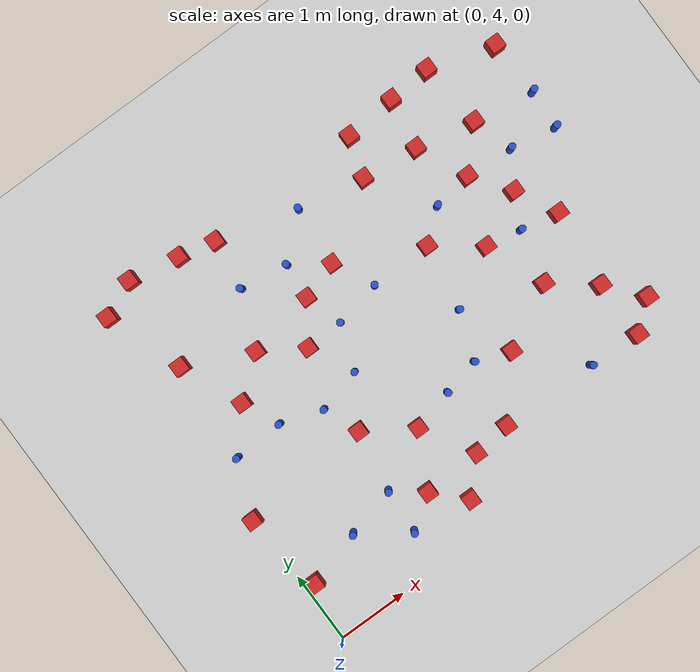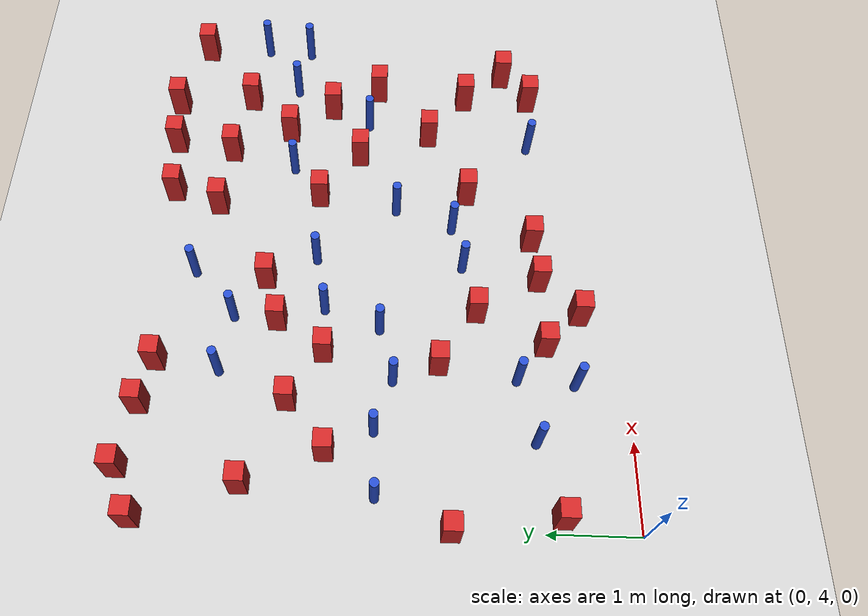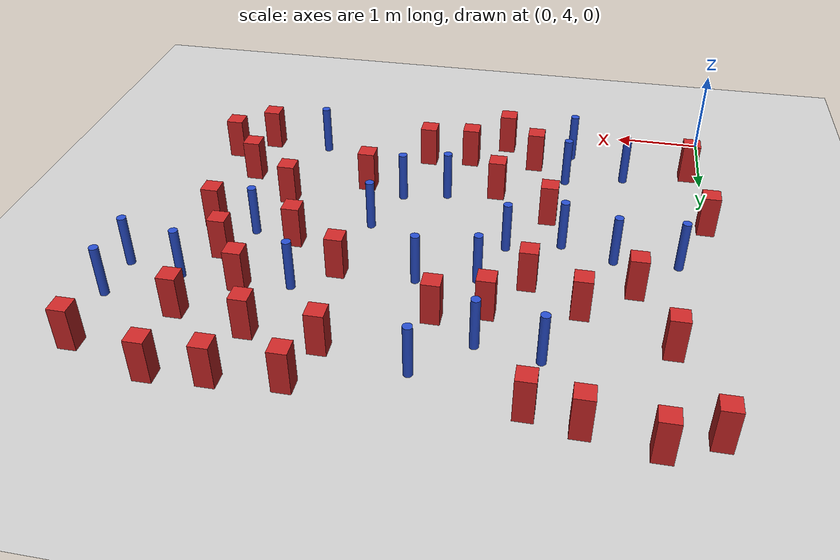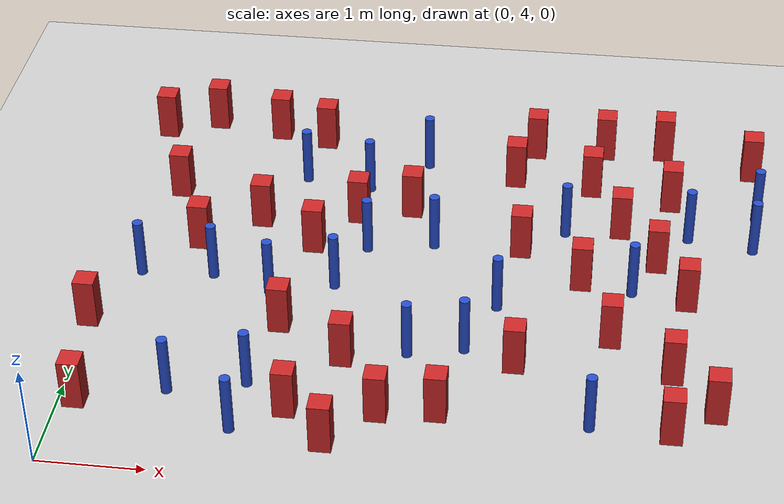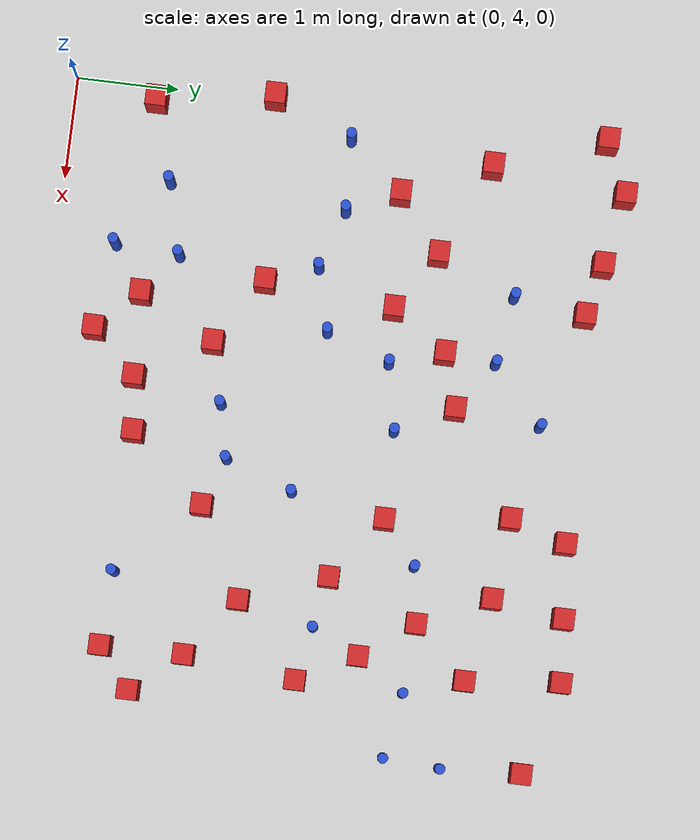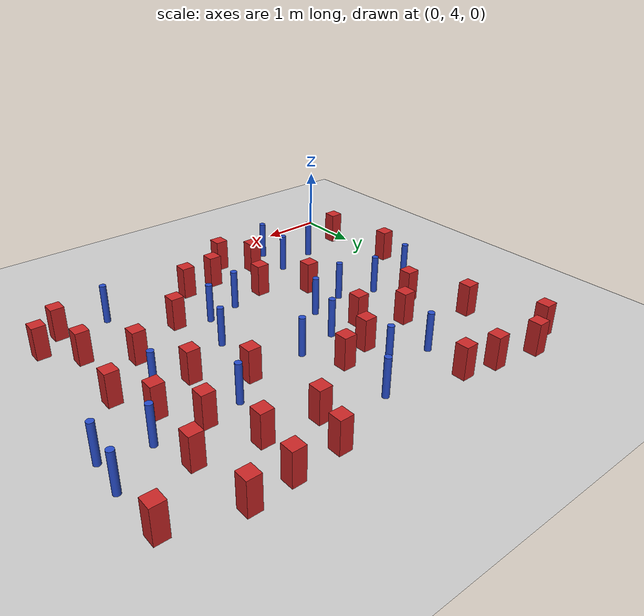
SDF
<sdf version="1.6">
 <world name="default">
  <model name="ground_plane">
   <static>1</static>
   <link name="link">
    <collision name="collision">
     <geometry><plane><normal>0 0 1</normal><size>100 100</size></plane></geometry>
     <surface><friction><ode><mu>100</mu><mu2>50</mu2></ode></friction></surface>
    </collision>
    <visual name="visual">
     <cast_shadows>0</cast_shadows>
     <geometry><plane><normal>0 0 1</normal><size>100 100</size></plane></geometry>
     <material>
      <ambient>1.0 1.0 1.0 1.0</ambient>
      <diffuse>0.8 0.8 0.8 1.0</diffuse>
      <specular>0.01 0.01 0.01 1.000000</specular>
     </material>
    </visual>
   </link>
  </model>
  <model name="square_post_obstacle8">
   <static>true</static>
   <pose>4.57876840298 7.04523477632 8.22691968438e-08 7.2212513382e-06 -7.54495500217e-07 2.29674213826e-05</pose>
   <link name="link">
    <pose>0 0 0.25 0 -0 0</pose>
    <inertial>
     <mass>100</mass>
     <inertia>
      <ixx>0.166667</ixx>
      <ixy>0</ixy>
      <ixz>0</ixz>
      <iyy>0.166667</iyy>
      <iyz>0</iyz>
      <izz>0.166667</izz>
     </inertia>
    </inertial>
    <collision name="collision"><geometry><box><size>.2 .2 .5</size></box></geometry></collision>
    <visual name="visual">
     <geometry><box><size>.2 .2 .5</size></box></geometry>
     <material>
      <script><name>Gazebo/Red</name><uri>file://media/materials/scripts/gazebo.material</uri></script>
     </material>
    </visual>
   </link>
  </model>
  <model name="square_post_obstacle13">
   <static>true</static>
   <pose>3.40323351395 4.99912729848 8.22691968438e-08 7.2212513382e-06 -7.54495500217e-07 2.29674213826e-05</pose>
   <link name="link">
    <pose>0 0 0.25 0 -0 0</pose>
    <inertial>
     <mass>100</mass>
     <inertia>
      <ixx>0.166667</ixx>
      <ixy>0</ixy>
      <ixz>0</ixz>
      <iyy>0.166667</iyy>
      <iyz>0</iyz>
      <izz>0.166667</izz>
     </inertia>
    </inertial>
    <collision name="collision"><geometry><box><size>.2 .2 .5</size></box></geometry></collision>
    <visual name="visual">
     <geometry><box><size>.2 .2 .5</size></box></geometry>
     <material>
      <script><name>Gazebo/Red</name><uri>file://media/materials/scripts/gazebo.material</uri></script>
     </material>
    </visual>
   </link>
  </model>
  <model name="square_post_obstacle14">
   <static>true</static>
   <pose>-0.00798470232035 5.96544968647 8.22691968438e-08 7.2212513382e-06 -7.54495500217e-07 2.29674213826e-05</pose>
   <link name="link">
    <pose>0 0 0.25 0 -0 0</pose>
    <inertial>
     <mass>100</mass>
     <inertia>
      <ixx>0.166667</ixx>
      <ixy>0</ixy>
      <ixz>0</ixz>
      <iyy>0.166667</iyy>
      <iyz>0</iyz>
      <izz>0.166667</izz>
     </inertia>
    </inertial>
    <collision name="collision"><geometry><box><size>.2 .2 .5</size></box></geometry></collision>
    <visual name="visual">
     <geometry><box><size>.2 .2 .5</size></box></geometry>
     <material>
      <script><name>Gazebo/Red</name><uri>file://media/materials/scripts/gazebo.material</uri></script>
     </material>
    </visual>
   </link>
  </model>
  <model name="pole_obstacle10">
   <static>true</static>
   <pose>3.09828603767 7.49898058543 2.88873142074e-08 -9.90536689859e-09 4.60219948989e-07 -1.20965994961e-07</pose>
   <link name="link">
    <pose>0 0 0.3 0 -0 0</pose>
    <inertial>
     <mass>1</mass>
     <inertia><ixx>0.145833</ixx><ixy>0</ixy><ixz>0</ixz><iyy>0.145833</iyy><iyz>0</iyz><izz>0.125</izz></inertia>
    </inertial>
    <collision name="collision">
     <geometry><cylinder><radius>0.05</radius><length>.6</length></cylinder></geometry>
    </collision>
    <visual name="visual">
     <geometry><cylinder><radius>0.05</radius><length>.6</length></cylinder></geometry>
     <material>
      <script><name>Gazebo/Blue</name><uri>file://media/materials/scripts/gazebo.material</uri></script>
     </material>
    </visual>
   </link>
  </model>
  <model name="square_post_obstacle30">
   <static>true</static>
   <pose>4.03674224077 5.743831118 8.22691968438e-08 7.2212513382e-06 -7.54495500217e-07 2.29674213826e-05</pose>
   <link name="link">
    <pose>0 0 0.25 0 -0 0</pose>
    <inertial>
     <mass>100</mass>
     <inertia>
      <ixx>0.166667</ixx>
      <ixy>0</ixy>
      <ixz>0</ixz>
      <iyy>0.166667</iyy>
      <iyz>0</iyz>
      <izz>0.166667</izz>
     </inertia>
    </inertial>
    <collision name="collision"><geometry><box><size>.2 .2 .5</size></box></geometry></collision>
    <visual name="visual">
     <geometry><box><size>.2 .2 .5</size></box></geometry>
     <material>
      <script><name>Gazebo/Red</name><uri>file://media/materials/scripts/gazebo.material</uri></script>
     </material>
    </visual>
   </link>
  </model>
  <model name="pole_obstacle20">
   <static>true</static>
   <pose>2.21441117442 6.74171185477 2.88873142074e-08 -9.90536689859e-09 4.60219948989e-07 -1.20965994961e-07</pose>
   <link name="link">
    <pose>0 0 0.3 0 -0 0</pose>
    <inertial>
     <mass>1</mass>
     <inertia><ixx>0.145833</ixx><ixy>0</ixy><ixz>0</ixz><iyy>0.145833</iyy><iyz>0</iyz><izz>0.125</izz></inertia>
    </inertial>
    <collision name="collision">
     <geometry><cylinder><radius>0.05</radius><length>.6</length></cylinder></geometry>
    </collision>
    <visual name="visual">
     <geometry><cylinder><radius>0.05</radius><length>.6</length></cylinder></geometry>
     <material>
      <script><name>Gazebo/Blue</name><uri>file://media/materials/scripts/gazebo.material</uri></script>
     </material>
    </visual>
   </link>
  </model>
  <model name="pole_obstacle21">
   <static>true</static>
   <pose>2.88719368708 8.89688265906 2.88873142074e-08 -9.90536692318e-09 4.6021994893e-07 -1.20965994988e-07</pose>
   <link name="link">
    <pose>0 0 0.3 0 -0 0</pose>
    <inertial>
     <mass>1</mass>
     <inertia><ixx>0.145833</ixx><ixy>0</ixy><ixz>0</ixz><iyy>0.145833</iyy><iyz>0</iyz><izz>0.125</izz></inertia>
    </inertial>
    <collision name="collision">
     <geometry><cylinder><radius>0.05</radius><length>.6</length></cylinder></geometry>
    </collision>
    <visual name="visual">
     <geometry><cylinder><radius>0.05</radius><length>.6</length></cylinder></geometry>
     <material>
      <script><name>Gazebo/Blue</name><uri>file://media/materials/scripts/gazebo.material</uri></script>
     </material>
    </visual>
   </link>
  </model>
  <model name="pole_obstacle24">
   <static>true</static>
   <pose>3.80260346224 6.58604447278 2.88873142074e-08 -9.90536689859e-09 4.60219948989e-07 -1.20965994961e-07</pose>
   <link name="link">
    <pose>0 0 0.3 0 -0 0</pose>
    <inertial>
     <mass>1</mass>
     <inertia><ixx>0.145833</ixx><ixy>0</ixy><ixz>0</ixz><iyy>0.145833</iyy><iyz>0</iyz><izz>0.125</izz></inertia>
    </inertial>
    <collision name="collision">
     <geometry><cylinder><radius>0.05</radius><length>.6</length></cylinder></geometry>
    </collision>
    <visual name="visual">
     <geometry><cylinder><radius>0.05</radius><length>.6</length></cylinder></geometry>
     <material>
      <script><name>Gazebo/Blue</name><uri>file://media/materials/scripts/gazebo.material</uri></script>
     </material>
    </visual>
   </link>
  </model>
  <model name="pole_obstacle41">
   <static>true</static>
   <pose>6.27417485904 8.31867093335 2.88873142074e-08 -9.9053668967e-09 4.60219948993e-07 -1.20965994957e-07</pose>
   <link name="link">
    <pose>0 0 0.3 0 -0 0</pose>
    <inertial>
     <mass>1</mass>
     <inertia><ixx>0.145833</ixx><ixy>0</ixy><ixz>0</ixz><iyy>0.145833</iyy><iyz>0</iyz><izz>0.125</izz></inertia>
    </inertial>
    <collision name="collision">
     <geometry><cylinder><radius>0.05</radius><length>.6</length></cylinder></geometry>
    </collision>
    <visual name="visual">
     <geometry><cylinder><radius>0.05</radius><length>.6</length></cylinder></geometry>
     <material>
      <script><name>Gazebo/Blue</name><uri>file://media/materials/scripts/gazebo.material</uri></script>
     </material>
    </visual>
   </link>
  </model>
  <model name="square_post_obstacle41">
   <static>true</static>
   <pose>5.88367011659 5.26555911146 8.22691968438e-08 7.2212513382e-06 -7.54495500217e-07 2.29674213826e-05</pose>
   <link name="link">
    <pose>0 0 0.25 0 -0 0</pose>
    <inertial>
     <mass>100</mass>
     <inertia>
      <ixx>0.166667</ixx>
      <ixy>0</ixy>
      <ixz>0</ixz>
      <iyy>0.166667</iyy>
      <iyz>0</iyz>
      <izz>0.166667</izz>
     </inertia>
    </inertial>
    <collision name="collision"><geometry><box><size>.2 .2 .5</size></box></geometry></collision>
    <visual name="visual">
     <geometry><box><size>.2 .2 .5</size></box></geometry>
     <material>
      <script><name>Gazebo/Red</name><uri>file://media/materials/scripts/gazebo.material</uri></script>
     </material>
    </visual>
   </link>
  </model>
  <model name="square_post_obstacle44">
   <static>true</static>
   <pose>0.156827812403 4.81710691078 8.22691968438e-08 7.2212513382e-06 -7.54495500217e-07 2.29674213826e-05</pose>
   <link name="link">
    <pose>0 0 0.25 0 -0 0</pose>
    <inertial>
     <mass>100</mass>
     <inertia>
      <ixx>0.166667</ixx>
      <ixy>0</ixy>
      <ixz>0</ixz>
      <iyy>0.166667</iyy>
      <iyz>0</iyz>
      <izz>0.166667</izz>
     </inertia>
    </inertial>
    <collision name="collision"><geometry><box><size>.2 .2 .5</size></box></geometry></collision>
    <visual name="visual">
     <geometry><box><size>.2 .2 .5</size></box></geometry>
     <material>
      <script><name>Gazebo/Red</name><uri>file://media/materials/scripts/gazebo.material</uri></script>
     </material>
    </visual>
   </link>
  </model>
  <model name="square_post_obstacle51">
   <static>true</static>
   <pose>4.9247102491 7.93212457386 8.22691968438e-08 7.22125133819e-06 -7.54495500217e-07 2.29674213826e-05</pose>
   <link name="link">
    <pose>0 0 0.25 0 -0 0</pose>
    <inertial>
     <mass>100</mass>
     <inertia>
      <ixx>0.166667</ixx>
      <ixy>0</ixy>
      <ixz>0</ixz>
      <iyy>0.166667</iyy>
      <iyz>0</iyz>
      <izz>0.166667</izz>
     </inertia>
    </inertial>
    <collision name="collision"><geometry><box><size>.2 .2 .5</size></box></geometry></collision>
    <visual name="visual">
     <geometry><box><size>.2 .2 .5</size></box></geometry>
     <material>
      <script><name>Gazebo/Red</name><uri>file://media/materials/scripts/gazebo.material</uri></script>
     </material>
    </visual>
   </link>
  </model>
  <model name="square_post_obstacle53">
   <static>true</static>
   <pose>0.416172709034 8.1479831684 8.22691968438e-08 7.22125133819e-06 -7.54495500217e-07 2.29674213826e-05</pose>
   <link name="link">
    <pose>0 0 0.25 0 -0 0</pose>
    <inertial>
     <mass>100</mass>
     <inertia>
      <ixx>0.166667</ixx>
      <ixy>0</ixy>
      <ixz>0</ixz>
      <iyy>0.166667</iyy>
      <iyz>0</iyz>
      <izz>0.166667</izz>
     </inertia>
    </inertial>
    <collision name="collision"><geometry><box><size>.2 .2 .5</size></box></geometry></collision>
    <visual name="visual">
     <geometry><box><size>.2 .2 .5</size></box></geometry>
     <material>
      <script><name>Gazebo/Red</name><uri>file://media/materials/scripts/gazebo.material</uri></script>
     </material>
    </visual>
   </link>
  </model>
  <model name="square_post_obstacle56">
   <static>true</static>
   <pose>5.48619430211 5.75062280296 8.22691968438e-08 7.2212513382e-06 -7.54495500217e-07 2.29674213826e-05</pose>
   <link name="link">
    <pose>0 0 0.25 0 -0 0</pose>
    <inertial>
     <mass>100</mass>
     <inertia>
      <ixx>0.166667</ixx>
      <ixy>0</ixy>
      <ixz>0</ixz>
      <iyy>0.166667</iyy>
      <iyz>0</iyz>
      <izz>0.166667</izz>
     </inertia>
    </inertial>
    <collision name="collision"><geometry><box><size>.2 .2 .5</size></box></geometry></collision>
    <visual name="visual">
     <geometry><box><size>.2 .2 .5</size></box></geometry>
     <material>
      <script><name>Gazebo/Red</name><uri>file://media/materials/scripts/gazebo.material</uri></script>
     </material>
    </visual>
   </link>
  </model>
  <model name="square_post_obstacle58">
   <static>true</static>
   <pose>1.25221591669 9.31851038868 8.22691968438e-08 7.22125133819e-06 -7.54495500217e-07 2.29674213826e-05</pose>
   <link name="link">
    <pose>0 0 0.25 0 -0 0</pose>
    <inertial>
     <mass>100</mass>
     <inertia>
      <ixx>0.166667</ixx>
      <ixy>0</ixy>
      <ixz>0</ixz>
      <iyy>0.166667</iyy>
      <iyz>0</iyz>
      <izz>0.166667</izz>
     </inertia>
    </inertial>
    <collision name="collision"><geometry><box><size>.2 .2 .5</size></box></geometry></collision>
    <visual name="visual">
     <geometry><box><size>.2 .2 .5</size></box></geometry>
     <material>
      <script><name>Gazebo/Red</name><uri>file://media/materials/scripts/gazebo.material</uri></script>
     </material>
    </visual>
   </link>
  </model>
  <model name="square_post_obstacle59">
   <static>true</static>
   <pose>6.22963247851 9.09659056783 8.22691968438e-08 7.22125133819e-06 -7.54495500217e-07 2.29674213826e-05</pose>
   <link name="link">
    <pose>0 0 0.25 0 -0 0</pose>
    <inertial>
     <mass>100</mass>
     <inertia>
      <ixx>0.166667</ixx>
      <ixy>0</ixy>
      <ixz>0</ixz>
      <iyy>0.166667</iyy>
      <iyz>0</iyz>
      <izz>0.166667</izz>
     </inertia>
    </inertial>
    <collision name="collision"><geometry><box><size>.2 .2 .5</size></box></geometry></collision>
    <visual name="visual">
     <geometry><box><size>.2 .2 .5</size></box></geometry>
     <material>
      <script><name>Gazebo/Red</name><uri>file://media/materials/scripts/gazebo.material</uri></script>
     </material>
    </visual>
   </link>
  </model>
  <model name="square_post_obstacle63">
   <static>true</static>
   <pose>2.45095350222 4.49696859509 8.22691968438e-08 7.2212513382e-06 -7.54495500217e-07 2.29674213826e-05</pose>
   <link name="link">
    <pose>0 0 0.25 0 -0 0</pose>
    <inertial>
     <mass>100</mass>
     <inertia>
      <ixx>0.166667</ixx>
      <ixy>0</ixy>
      <ixz>0</ixz>
      <iyy>0.166667</iyy>
      <iyz>0</iyz>
      <izz>0.166667</izz>
     </inertia>
    </inertial>
    <collision name="collision"><geometry><box><size>.2 .2 .5</size></box></geometry></collision>
    <visual name="visual">
     <geometry><box><size>.2 .2 .5</size></box></geometry>
     <material>
      <script><name>Gazebo/Red</name><uri>file://media/materials/scripts/gazebo.material</uri></script>
     </material>
    </visual>
   </link>
  </model>
  <model name="square_post_obstacle65">
   <static>true</static>
   <pose>4.89993201516 6.2070256517 8.22691968438e-08 7.2212513382e-06 -7.54495500217e-07 2.29674213826e-05</pose>
   <link name="link">
    <pose>0 0 0.25 0 -0 0</pose>
    <inertial>
     <mass>100</mass>
     <inertia>
      <ixx>0.166667</ixx>
      <ixy>0</ixy>
      <ixz>0</ixz>
      <iyy>0.166667</iyy>
      <iyz>0</iyz>
      <izz>0.166667</izz>
     </inertia>
    </inertial>
    <collision name="collision"><geometry><box><size>.2 .2 .5</size></box></geometry></collision>
    <visual name="visual">
     <geometry><box><size>.2 .2 .5</size></box></geometry>
     <material>
      <script><name>Gazebo/Red</name><uri>file://media/materials/scripts/gazebo.material</uri></script>
     </material>
    </visual>
   </link>
  </model>
  <model name="square_post_obstacle75">
   <static>true</static>
   <pose>2.28746599351 7.89811387432 8.22691968438e-08 7.2212513382e-06 -7.54495500217e-07 2.29674213826e-05</pose>
   <link name="link">
    <pose>0 0 0.25 0 -0 0</pose>
    <inertial>
     <mass>100</mass>
     <inertia>
      <ixx>0.166667</ixx>
      <ixy>0</ixy>
      <ixz>0</ixz>
      <iyy>0.166667</iyy>
      <iyz>0</iyz>
      <izz>0.166667</izz>
     </inertia>
    </inertial>
    <collision name="collision"><geometry><box><size>.2 .2 .5</size></box></geometry></collision>
    <visual name="visual">
     <geometry><box><size>.2 .2 .5</size></box></geometry>
     <material>
      <script><name>Gazebo/Red</name><uri>file://media/materials/scripts/gazebo.material</uri></script>
     </material>
    </visual>
   </link>
  </model>
  <model name="pole_obstacle75">
   <static>true</static>
   <pose>6.23788131966 7.76717059234 2.88873142074e-08 -9.90536690842e-09 4.60219948965e-07 -1.20965994976e-07</pose>
   <link name="link">
    <pose>0 0 0.3 0 -0 0</pose>
    <inertial>
     <mass>1</mass>
     <inertia><ixx>0.145833</ixx><ixy>0</ixy><ixz>0</ixz><iyy>0.145833</iyy><iyz>0</iyz><izz>0.125</izz></inertia>
    </inertial>
    <collision name="collision">
     <geometry><cylinder><radius>0.05</radius><length>.6</length></cylinder></geometry>
    </collision>
    <visual name="visual">
     <geometry><cylinder><radius>0.05</radius><length>.6</length></cylinder></geometry>
     <material>
      <script><name>Gazebo/Blue</name><uri>file://media/materials/scripts/gazebo.material</uri></script>
     </material>
    </visual>
   </link>
  </model>
  <model name="square_post_obstacle78">
   <static>true</static>
   <pose>3.95987664156 7.50894178127 8.22691968438e-08 7.2212513382e-06 -7.54495500217e-07 2.29674213826e-05</pose>
   <link name="link">
    <pose>0 0 0.25 0 -0 0</pose>
    <inertial>
     <mass>100</mass>
     <inertia>
      <ixx>0.166667</ixx>
      <ixy>0</ixy>
      <ixz>0</ixz>
      <iyy>0.166667</iyy>
      <iyz>0</iyz>
      <izz>0.166667</izz>
     </inertia>
    </inertial>
    <collision name="collision"><geometry><box><size>.2 .2 .5</size></box></geometry></collision>
    <visual name="visual">
     <geometry><box><size>.2 .2 .5</size></box></geometry>
     <material>
      <script><name>Gazebo/Red</name><uri>file://media/materials/scripts/gazebo.material</uri></script>
     </material>
    </visual>
   </link>
  </model>
  <model name="pole_obstacle81">
   <static>true</static>
   <pose>1.6059584543 4.5907975142 2.88873142074e-08 -9.90536689852e-09 4.60219948989e-07 -1.2096599496e-07</pose>
   <link name="link">
    <pose>0 0 0.3 0 -0 0</pose>
    <inertial>
     <mass>1</mass>
     <inertia><ixx>0.145833</ixx><ixy>0</ixy><ixz>0</ixz><iyy>0.145833</iyy><iyz>0</iyz><izz>0.125</izz></inertia>
    </inertial>
    <collision name="collision">
     <geometry><cylinder><radius>0.05</radius><length>.6</length></cylinder></geometry>
    </collision>
    <visual name="visual">
     <geometry><cylinder><radius>0.05</radius><length>.6</length></cylinder></geometry>
     <material>
      <script><name>Gazebo/Blue</name><uri>file://media/materials/scripts/gazebo.material</uri></script>
     </material>
    </visual>
   </link>
  </model>
  <model name="pole_obstacle82">
   <static>true</static>
   <pose>2.44799433715 7.37099549775 2.88873142074e-08 -9.90536689859e-09 4.60219948989e-07 -1.20965994961e-07</pose>
   <link name="link">
    <pose>0 0 0.3 0 -0 0</pose>
    <inertial>
     <mass>1</mass>
     <inertia><ixx>0.145833</ixx><ixy>0</ixy><ixz>0</ixz><iyy>0.145833</iyy><iyz>0</iyz><izz>0.125</izz></inertia>
    </inertial>
    <collision name="collision">
     <geometry><cylinder><radius>0.05</radius><length>.6</length></cylinder></geometry>
    </collision>
    <visual name="visual">
     <geometry><cylinder><radius>0.05</radius><length>.6</length></cylinder></geometry>
     <material>
      <script><name>Gazebo/Blue</name><uri>file://media/materials/scripts/gazebo.material</uri></script>
     </material>
    </visual>
   </link>
  </model>
  <model name="pole_obstacle85">
   <static>true</static>
   <pose>1.6008729363 6.58319369285 2.88873142074e-08 -9.90536689852e-09 4.60219948989e-07 -1.2096599496e-07</pose>
   <link name="link">
    <pose>0 0 0.3 0 -0 0</pose>
    <inertial>
     <mass>1</mass>
     <inertia><ixx>0.145833</ixx><ixy>0</ixy><ixz>0</ixz><iyy>0.145833</iyy><iyz>0</iyz><izz>0.125</izz></inertia>
    </inertial>
    <collision name="collision">
     <geometry><cylinder><radius>0.05</radius><length>.6</length></cylinder></geometry>
    </collision>
    <visual name="visual">
     <geometry><cylinder><radius>0.05</radius><length>.6</length></cylinder></geometry>
     <material>
      <script><name>Gazebo/Blue</name><uri>file://media/materials/scripts/gazebo.material</uri></script>
     </material>
    </visual>
   </link>
  </model>
  <model name="pole_obstacle90">
   <static>true</static>
   <pose>5.60018201422 7.88419576358 2.88873142074e-08 -9.90536690842e-09 4.60219948965e-07 -1.20965994976e-07</pose>
   <link name="link">
    <pose>0 0 0.3 0 -0 0</pose>
    <inertial>
     <mass>1</mass>
     <inertia><ixx>0.145833</ixx><ixy>0</ixy><ixz>0</ixz><iyy>0.145833</iyy><iyz>0</iyz><izz>0.125</izz></inertia>
    </inertial>
    <collision name="collision">
     <geometry><cylinder><radius>0.05</radius><length>.6</length></cylinder></geometry>
    </collision>
    <visual name="visual">
     <geometry><cylinder><radius>0.05</radius><length>.6</length></cylinder></geometry>
     <material>
      <script><name>Gazebo/Blue</name><uri>file://media/materials/scripts/gazebo.material</uri></script>
     </material>
    </visual>
   </link>
  </model>
  <model name="square_post_obstacle87">
   <static>true</static>
   <pose>3.81246902294 8.71523009562 8.22691968438e-08 7.22125133819e-06 -7.54495500217e-07 2.29674213826e-05</pose>
   <link name="link">
    <pose>0 0 0.25 0 -0 0</pose>
    <inertial>
     <mass>100</mass>
     <inertia>
      <ixx>0.166667</ixx>
      <ixy>0</ixy>
      <ixz>0</ixz>
      <iyy>0.166667</iyy>
      <iyz>0</iyz>
      <izz>0.166667</izz>
     </inertia>
    </inertial>
    <collision name="collision"><geometry><box><size>.2 .2 .5</size></box></geometry></collision>
    <visual name="visual">
     <geometry><box><size>.2 .2 .5</size></box></geometry>
     <material>
      <script><name>Gazebo/Red</name><uri>file://media/materials/scripts/gazebo.material</uri></script>
     </material>
    </visual>
   </link>
  </model>
  <model name="pole_obstacle106">
   <static>true</static>
   <pose>4.76808789979 4.97475466711 2.88873142074e-08 -9.90536690842e-09 4.60219948965e-07 -1.20965994976e-07</pose>
   <link name="link">
    <pose>0 0 0.3 0 -0 0</pose>
    <inertial>
     <mass>1</mass>
     <inertia><ixx>0.145833</ixx><ixy>0</ixy><ixz>0</ixz><iyy>0.145833</iyy><iyz>0</iyz><izz>0.125</izz></inertia>
    </inertial>
    <collision name="collision">
     <geometry><cylinder><radius>0.05</radius><length>.6</length></cylinder></geometry>
    </collision>
    <visual name="visual">
     <geometry><cylinder><radius>0.05</radius><length>.6</length></cylinder></geometry>
     <material>
      <script><name>Gazebo/Blue</name><uri>file://media/materials/scripts/gazebo.material</uri></script>
     </material>
    </visual>
   </link>
  </model>
  <model name="square_post_obstacle99">
   <static>true</static>
   <pose>1.76268562538 9.20268850267 8.22691968438e-08 7.22125133819e-06 -7.54495500217e-07 2.29674213826e-05</pose>
   <link name="link">
    <pose>0 0 0.25 0 -0 0</pose>
    <inertial>
     <mass>100</mass>
     <inertia>
      <ixx>0.166667</ixx>
      <ixy>0</ixy>
      <ixz>0</ixz>
      <iyy>0.166667</iyy>
      <iyz>0</iyz>
      <izz>0.166667</izz>
     </inertia>
    </inertial>
    <collision name="collision"><geometry><box><size>.2 .2 .5</size></box></geometry></collision>
    <visual name="visual">
     <geometry><box><size>.2 .2 .5</size></box></geometry>
     <material>
      <script><name>Gazebo/Red</name><uri>file://media/materials/scripts/gazebo.material</uri></script>
     </material>
    </visual>
   </link>
  </model>
  <model name="square_post_obstacle100">
   <static>true</static>
   <pose>1.79776427831 6.08435373461 8.22691968438e-08 7.2212513382e-06 -7.54495500217e-07 2.29674213826e-05</pose>
   <link name="link">
    <pose>0 0 0.25 0 -0 0</pose>
    <inertial>
     <mass>100</mass>
     <inertia>
      <ixx>0.166667</ixx>
      <ixy>0</ixy>
      <ixz>0</ixz>
      <iyy>0.166667</iyy>
      <iyz>0</iyz>
      <izz>0.166667</izz>
     </inertia>
    </inertial>
    <collision name="collision"><geometry><box><size>.2 .2 .5</size></box></geometry></collision>
    <visual name="visual">
     <geometry><box><size>.2 .2 .5</size></box></geometry>
     <material>
      <script><name>Gazebo/Red</name><uri>file://media/materials/scripts/gazebo.material</uri></script>
     </material>
    </visual>
   </link>
  </model>
  <model name="pole_obstacle115">
   <static>true</static>
   <pose>0.312412981404 6.74442042341 2.88873142074e-08 -9.90536689683e-09 4.60219948993e-07 -1.20965994957e-07</pose>
   <link name="link">
    <pose>0 0 0.3 0 -0 0</pose>
    <inertial>
     <mass>1</mass>
     <inertia><ixx>0.145833</ixx><ixy>0</ixy><ixz>0</ixz><iyy>0.145833</iyy><iyz>0</iyz><izz>0.125</izz></inertia>
    </inertial>
    <collision name="collision">
     <geometry><cylinder><radius>0.05</radius><length>.6</length></cylinder></geometry>
    </collision>
    <visual name="visual">
     <geometry><cylinder><radius>0.05</radius><length>.6</length></cylinder></geometry>
     <material>
      <script><name>Gazebo/Blue</name><uri>file://media/materials/scripts/gazebo.material</uri></script>
     </material>
    </visual>
   </link>
  </model>
  <model name="pole_obstacle117">
   <static>true</static>
   <pose>1.01860684124 6.77440765655 2.88873142074e-08 -9.90536689905e-09 4.60219948988e-07 -1.20965994961e-07</pose>
   <link name="link">
    <pose>0 0 0.3 0 -0 0</pose>
    <inertial>
     <mass>1</mass>
     <inertia><ixx>0.145833</ixx><ixy>0</ixy><ixz>0</ixz><iyy>0.145833</iyy><iyz>0</iyz><izz>0.125</izz></inertia>
    </inertial>
    <collision name="collision">
     <geometry><cylinder><radius>0.05</radius><length>.6</length></cylinder></geometry>
    </collision>
    <visual name="visual">
     <geometry><cylinder><radius>0.05</radius><length>.6</length></cylinder></geometry>
     <material>
      <script><name>Gazebo/Blue</name><uri>file://media/materials/scripts/gazebo.material</uri></script>
     </material>
    </visual>
   </link>
  </model>
  <model name="square_post_obstacle103">
   <static>true</static>
   <pose>0.0389080788594 9.22675519482 8.22691968438e-08 7.22125133819e-06 -7.54495500217e-07 2.29674213826e-05</pose>
   <link name="link">
    <pose>0 0 0.25 0 -0 0</pose>
    <inertial>
     <mass>100</mass>
     <inertia>
      <ixx>0.166667</ixx>
      <ixy>0</ixy>
      <ixz>0</ixz>
      <iyy>0.166667</iyy>
      <iyz>0</iyz>
      <izz>0.166667</izz>
     </inertia>
    </inertial>
    <collision name="collision"><geometry><box><size>.2 .2 .5</size></box></geometry></collision>
    <visual name="visual">
     <geometry><box><size>.2 .2 .5</size></box></geometry>
     <material>
      <script><name>Gazebo/Red</name><uri>file://media/materials/scripts/gazebo.material</uri></script>
     </material>
    </visual>
   </link>
  </model>
  <model name="square_post_obstacle115">
   <static>true</static>
   <pose>5.41427190666 8.45571261281 8.22691968438e-08 7.22125133819e-06 -7.54495500217e-07 2.29674213826e-05</pose>
   <link name="link">
    <pose>0 0 0.25 0 -0 0</pose>
    <inertial>
     <mass>100</mass>
     <inertia>
      <ixx>0.166667</ixx>
      <ixy>0</ixy>
      <ixz>0</ixz>
      <iyy>0.166667</iyy>
      <iyz>0</iyz>
      <izz>0.166667</izz>
     </inertia>
    </inertial>
    <collision name="collision"><geometry><box><size>.2 .2 .5</size></box></geometry></collision>
    <visual name="visual">
     <geometry><box><size>.2 .2 .5</size></box></geometry>
     <material>
      <script><name>Gazebo/Red</name><uri>file://media/materials/scripts/gazebo.material</uri></script>
     </material>
    </visual>
   </link>
  </model>
  <model name="square_post_obstacle122">
   <static>true</static>
   <pose>4.59975851457 8.62680453287 8.22691968438e-08 7.22125133819e-06 -7.54495500217e-07 2.29674213826e-05</pose>
   <link name="link">
    <pose>0 0 0.25 0 -0 0</pose>
    <inertial>
     <mass>100</mass>
     <inertia>
      <ixx>0.166667</ixx>
      <ixy>0</ixy>
      <ixz>0</ixz>
      <iyy>0.166667</iyy>
      <iyz>0</iyz>
      <izz>0.166667</izz>
     </inertia>
    </inertial>
    <collision name="collision"><geometry><box><size>.2 .2 .5</size></box></geometry></collision>
    <visual name="visual">
     <geometry><box><size>.2 .2 .5</size></box></geometry>
     <material>
      <script><name>Gazebo/Red</name><uri>file://media/materials/scripts/gazebo.material</uri></script>
     </material>
    </visual>
   </link>
  </model>
  <model name="pole_obstacle143">
   <static>true</static>
   <pose>4.37818205917 7.84994592368 2.88873142074e-08 -9.90536690842e-09 4.60219948965e-07 -1.20965994976e-07</pose>
   <link name="link">
    <pose>0 0 0.3 0 -0 0</pose>
    <inertial>
     <mass>1</mass>
     <inertia><ixx>0.145833</ixx><ixy>0</ixy><ixz>0</ixz><iyy>0.145833</iyy><iyz>0</iyz><izz>0.125</izz></inertia>
    </inertial>
    <collision name="collision">
     <geometry><cylinder><radius>0.05</radius><length>.6</length></cylinder></geometry>
    </collision>
    <visual name="visual">
     <geometry><cylinder><radius>0.05</radius><length>.6</length></cylinder></geometry>
     <material>
      <script><name>Gazebo/Blue</name><uri>file://media/materials/scripts/gazebo.material</uri></script>
     </material>
    </visual>
   </link>
  </model>
  <model name="square_post_obstacle136">
   <static>true</static>
   <pose>1.91379057786 7.35582888959 8.22691968438e-08 7.2212513382e-06 -7.54495500217e-07 2.29674213826e-05</pose>
   <link name="link">
    <pose>0 0 0.25 0 -0 0</pose>
    <inertial>
     <mass>100</mass>
     <inertia>
      <ixx>0.166667</ixx>
      <ixy>0</ixy>
      <ixz>0</ixz>
      <iyy>0.166667</iyy>
      <iyz>0</iyz>
      <izz>0.166667</izz>
     </inertia>
    </inertial>
    <collision name="collision"><geometry><box><size>.2 .2 .5</size></box></geometry></collision>
    <visual name="visual">
     <geometry><box><size>.2 .2 .5</size></box></geometry>
     <material>
      <script><name>Gazebo/Red</name><uri>file://media/materials/scripts/gazebo.material</uri></script>
     </material>
    </visual>
   </link>
  </model>
  <model name="square_post_obstacle139">
   <static>true</static>
   <pose>2.81557732675 8.0610824571 8.22691968438e-08 7.22125133819e-06 -7.54495500217e-07 2.29674213826e-05</pose>
   <link name="link">
    <pose>0 0 0.25 0 -0 0</pose>
    <inertial>
     <mass>100</mass>
     <inertia>
      <ixx>0.166667</ixx>
      <ixy>0</ixy>
      <ixz>0</ixz>
      <iyy>0.166667</iyy>
      <iyz>0</iyz>
      <izz>0.166667</izz>
     </inertia>
    </inertial>
    <collision name="collision"><geometry><box><size>.2 .2 .5</size></box></geometry></collision>
    <visual name="visual">
     <geometry><box><size>.2 .2 .5</size></box></geometry>
     <material>
      <script><name>Gazebo/Red</name><uri>file://media/materials/scripts/gazebo.material</uri></script>
     </material>
    </visual>
   </link>
  </model>
  <model name="pole_obstacle159">
   <static>true</static>
   <pose>3.55886911977 5.92112853386 2.88873142074e-08 -9.90536689859e-09 4.60219948989e-07 -1.20965994961e-07</pose>
   <link name="link">
    <pose>0 0 0.3 0 -0 0</pose>
    <inertial>
     <mass>1</mass>
     <inertia><ixx>0.145833</ixx><ixy>0</ixy><ixz>0</ixz><iyy>0.145833</iyy><iyz>0</iyz><izz>0.125</izz></inertia>
    </inertial>
    <collision name="collision">
     <geometry><cylinder><radius>0.05</radius><length>.6</length></cylinder></geometry>
    </collision>
    <visual name="visual">
     <geometry><cylinder><radius>0.05</radius><length>.6</length></cylinder></geometry>
     <material>
      <script><name>Gazebo/Blue</name><uri>file://media/materials/scripts/gazebo.material</uri></script>
     </material>
    </visual>
   </link>
  </model>
  <model name="square_post_obstacle159">
   <static>true</static>
   <pose>0.787195282493 7.28778392952 8.22691968438e-08 7.2212513382e-06 -7.54495500217e-07 2.29674213826e-05</pose>
   <link name="link">
    <pose>0 0 0.25 0 -0 0</pose>
    <inertial>
     <mass>100</mass>
     <inertia>
      <ixx>0.166667</ixx>
      <ixy>0</ixy>
      <ixz>0</ixz>
      <iyy>0.166667</iyy>
      <iyz>0</iyz>
      <izz>0.166667</izz>
     </inertia>
    </inertial>
    <collision name="collision"><geometry><box><size>.2 .2 .5</size></box></geometry></collision>
    <visual name="visual">
     <geometry><box><size>.2 .2 .5</size></box></geometry>
     <material>
      <script><name>Gazebo/Red</name><uri>file://media/materials/scripts/gazebo.material</uri></script>
     </material>
    </visual>
   </link>
  </model>
  <model name="pole_obstacle167">
   <static>true</static>
   <pose>2.32943205403 8.39908318996 2.88873142074e-08 -9.90536692318e-09 4.6021994893e-07 -1.20965994988e-07</pose>
   <link name="link">
    <pose>0 0 0.3 0 -0 0</pose>
    <inertial>
     <mass>1</mass>
     <inertia><ixx>0.145833</ixx><ixy>0</ixy><ixz>0</ixz><iyy>0.145833</iyy><iyz>0</iyz><izz>0.125</izz></inertia>
    </inertial>
    <collision name="collision">
     <geometry><cylinder><radius>0.05</radius><length>.6</length></cylinder></geometry>
    </collision>
    <visual name="visual">
     <geometry><cylinder><radius>0.05</radius><length>.6</length></cylinder></geometry>
     <material>
      <script><name>Gazebo/Blue</name><uri>file://media/materials/scripts/gazebo.material</uri></script>
     </material>
    </visual>
   </link>
  </model>
  <model name="pole_obstacle168">
   <static>true</static>
   <pose>3.0379811975 5.80177565718 2.88873142074e-08 -9.90536689859e-09 4.60219948989e-07 -1.20965994961e-07</pose>
   <link name="link">
    <pose>0 0 0.3 0 -0 0</pose>
    <inertial>
     <mass>1</mass>
     <inertia><ixx>0.145833</ixx><ixy>0</ixy><ixz>0</ixz><iyy>0.145833</iyy><iyz>0</iyz><izz>0.125</izz></inertia>
    </inertial>
    <collision name="collision">
     <geometry><cylinder><radius>0.05</radius><length>.6</length></cylinder></geometry>
    </collision>
    <visual name="visual">
     <geometry><cylinder><radius>0.05</radius><length>.6</length></cylinder></geometry>
     <material>
      <script><name>Gazebo/Blue</name><uri>file://media/materials/scripts/gazebo.material</uri></script>
     </material>
    </visual>
   </link>
  </model>
  <model name="square_post_obstacle162">
   <static>true</static>
   <pose>5.31957134551 9.37327847159 8.22691968438e-08 7.22125133819e-06 -7.54495500217e-07 2.29674213826e-05</pose>
   <link name="link">
    <pose>0 0 0.25 0 -0 0</pose>
    <inertial>
     <mass>100</mass>
     <inertia>
      <ixx>0.166667</ixx>
      <ixy>0</ixy>
      <ixz>0</ixz>
      <iyy>0.166667</iyy>
      <iyz>0</iyz>
      <izz>0.166667</izz>
     </inertia>
    </inertial>
    <collision name="collision"><geometry><box><size>.2 .2 .5</size></box></geometry></collision>
    <visual name="visual">
     <geometry><box><size>.2 .2 .5</size></box></geometry>
     <material>
      <script><name>Gazebo/Red</name><uri>file://media/materials/scripts/gazebo.material</uri></script>
     </material>
    </visual>
   </link>
  </model>
  <model name="square_post_obstacle165">
   <static>true</static>
   <pose>5.59897487684 6.84159362725 8.22691968438e-08 7.2212513382e-06 -7.54495500217e-07 2.29674213826e-05</pose>
   <link name="link">
    <pose>0 0 0.25 0 -0 0</pose>
    <inertial>
     <mass>100</mass>
     <inertia>
      <ixx>0.166667</ixx>
      <ixy>0</ixy>
      <ixz>0</ixz>
      <iyy>0.166667</iyy>
      <iyz>0</iyz>
      <izz>0.166667</izz>
     </inertia>
    </inertial>
    <collision name="collision"><geometry><box><size>.2 .2 .5</size></box></geometry></collision>
    <visual name="visual">
     <geometry><box><size>.2 .2 .5</size></box></geometry>
     <material>
      <script><name>Gazebo/Red</name><uri>file://media/materials/scripts/gazebo.material</uri></script>
     </material>
    </visual>
   </link>
  </model>
  <model name="pole_obstacle177">
   <static>true</static>
   <pose>1.6616635296 8.50222593155 2.88873142074e-08 -9.90536690474e-09 4.60219948974e-07 -1.2096599497e-07</pose>
   <link name="link">
    <pose>0 0 0.3 0 -0 0</pose>
    <inertial>
     <mass>1</mass>
     <inertia><ixx>0.145833</ixx><ixy>0</ixy><ixz>0</ixz><iyy>0.145833</iyy><iyz>0</iyz><izz>0.125</izz></inertia>
    </inertial>
    <collision name="collision">
     <geometry><cylinder><radius>0.05</radius><length>.6</length></cylinder></geometry>
    </collision>
    <visual name="visual">
     <geometry><cylinder><radius>0.05</radius><length>.6</length></cylinder></geometry>
     <material>
      <script><name>Gazebo/Blue</name><uri>file://media/materials/scripts/gazebo.material</uri></script>
     </material>
    </visual>
   </link>
  </model>
  <model name="square_post_obstacle167">
   <static>true</static>
   <pose>2.45320588667 5.65755903346 8.22691968438e-08 7.2212513382e-06 -7.54495500217e-07 2.29674213826e-05</pose>
   <link name="link">
    <pose>0 0 0.25 0 -0 0</pose>
    <inertial>
     <mass>100</mass>
     <inertia>
      <ixx>0.166667</ixx>
      <ixy>0</ixy>
      <ixz>0</ixz>
      <iyy>0.166667</iyy>
      <iyz>0</iyz>
      <izz>0.166667</izz>
     </inertia>
    </inertial>
    <collision name="collision"><geometry><box><size>.2 .2 .5</size></box></geometry></collision>
    <visual name="visual">
     <geometry><box><size>.2 .2 .5</size></box></geometry>
     <material>
      <script><name>Gazebo/Red</name><uri>file://media/materials/scripts/gazebo.material</uri></script>
     </material>
    </visual>
   </link>
  </model>
  <model name="square_post_obstacle169">
   <static>true</static>
   <pose>0.548442466237 9.45200682736 8.22691968438e-08 7.22125133819e-06 -7.54495500217e-07 2.29674213826e-05</pose>
   <link name="link">
    <pose>0 0 0.25 0 -0 0</pose>
    <inertial>
     <mass>100</mass>
     <inertia>
      <ixx>0.166667</ixx>
      <ixy>0</ixy>
      <ixz>0</ixz>
      <iyy>0.166667</iyy>
      <iyz>0</iyz>
      <izz>0.166667</izz>
     </inertia>
    </inertial>
    <collision name="collision"><geometry><box><size>.2 .2 .5</size></box></geometry></collision>
    <visual name="visual">
     <geometry><box><size>.2 .2 .5</size></box></geometry>
     <material>
      <script><name>Gazebo/Red</name><uri>file://media/materials/scripts/gazebo.material</uri></script>
     </material>
    </visual>
   </link>
  </model>
  <model name="square_post_obstacle170">
   <static>true</static>
   <pose>2.87261023136 4.93837776235 8.22691968438e-08 7.2212513382e-06 -7.54495500217e-07 2.29674213826e-05</pose>
   <link name="link">
    <pose>0 0 0.25 0 -0 0</pose>
    <inertial>
     <mass>100</mass>
     <inertia>
      <ixx>0.166667</ixx>
      <ixy>0</ixy>
      <ixz>0</ixz>
      <iyy>0.166667</iyy>
      <iyz>0</iyz>
      <izz>0.166667</izz>
     </inertia>
    </inertial>
    <collision name="collision"><geometry><box><size>.2 .2 .5</size></box></geometry></collision>
    <visual name="visual">
     <geometry><box><size>.2 .2 .5</size></box></geometry>
     <material>
      <script><name>Gazebo/Red</name><uri>file://media/materials/scripts/gazebo.material</uri></script>
     </material>
    </visual>
   </link>
  </model>
  <model name="square_post_obstacle176">
   <static>true</static>
   <pose>3.98872872088 9.26747038104 8.22691968438e-08 7.22125133819e-06 -7.54495500217e-07 2.29674213826e-05</pose>
   <link name="link">
    <pose>0 0 0.25 0 -0 0</pose>
    <inertial>
     <mass>100</mass>
     <inertia>
      <ixx>0.166667</ixx>
      <ixy>0</ixy>
      <ixz>0</ixz>
      <iyy>0.166667</iyy>
      <iyz>0</iyz>
      <izz>0.166667</izz>
     </inertia>
    </inertial>
    <collision name="collision"><geometry><box><size>.2 .2 .5</size></box></geometry></collision>
    <visual name="visual">
     <geometry><box><size>.2 .2 .5</size></box></geometry>
     <material>
      <script><name>Gazebo/Red</name><uri>file://media/materials/scripts/gazebo.material</uri></script>
     </material>
    </visual>
   </link>
  </model>
  <model name="square_post_obstacle178">
   <static>true</static>
   <pose>5.49358379755 4.94605587806 8.22691968438e-08 7.2212513382e-06 -7.54495500217e-07 2.29674213826e-05</pose>
   <link name="link">
    <pose>0 0 0.25 0 -0 0</pose>
    <inertial>
     <mass>100</mass>
     <inertia>
      <ixx>0.166667</ixx>
      <ixy>0</ixy>
      <ixz>0</ixz>
      <iyy>0.166667</iyy>
      <iyz>0</iyz>
      <izz>0.166667</izz>
     </inertia>
    </inertial>
    <collision name="collision"><geometry><box><size>.2 .2 .5</size></box></geometry></collision>
    <visual name="visual">
     <geometry><box><size>.2 .2 .5</size></box></geometry>
     <material>
      <script><name>Gazebo/Red</name><uri>file://media/materials/scripts/gazebo.material</uri></script>
     </material>
    </visual>
   </link>
  </model>
  <model name="square_post_obstacle182">
   <static>true</static>
   <pose>5.29836317675 7.41537873852 8.22691968438e-08 7.2212513382e-06 -7.54495500217e-07 2.29674213826e-05</pose>
   <link name="link">
    <pose>0 0 0.25 0 -0 0</pose>
    <inertial>
     <mass>100</mass>
     <inertia>
      <ixx>0.166667</ixx>
      <ixy>0</ixy>
      <ixz>0</ixz>
      <iyy>0.166667</iyy>
      <iyz>0</iyz>
      <izz>0.166667</izz>
     </inertia>
    </inertial>
    <collision name="collision"><geometry><box><size>.2 .2 .5</size></box></geometry></collision>
    <visual name="visual">
     <geometry><box><size>.2 .2 .5</size></box></geometry>
     <material>
      <script><name>Gazebo/Red</name><uri>file://media/materials/scripts/gazebo.material</uri></script>
     </material>
    </visual>
   </link>
  </model>
  <model name="square_post_obstacle192">
   <static>true</static>
   <pose>4.71089073481 9.32927569345 8.22691968438e-08 7.22125133819e-06 -7.54495500217e-07 2.29674213826e-05</pose>
   <link name="link">
    <pose>0 0 0.25 0 -0 0</pose>
    <inertial>
     <mass>100</mass>
     <inertia>
      <ixx>0.166667</ixx>
      <ixy>0</ixy>
      <ixz>0</ixz>
      <iyy>0.166667</iyy>
      <iyz>0</iyz>
      <izz>0.166667</izz>
     </inertia>
    </inertial>
    <collision name="collision"><geometry><box><size>.2 .2 .5</size></box></geometry></collision>
    <visual name="visual">
     <geometry><box><size>.2 .2 .5</size></box></geometry>
     <material>
      <script><name>Gazebo/Red</name><uri>file://media/materials/scripts/gazebo.material</uri></script>
     </material>
    </visual>
   </link>
  </model>
  <model name="square_post_obstacle193">
   <static>true</static>
   <pose>1.33553847236 7.72496847702 8.22691968438e-08 7.2212513382e-06 -7.54495500217e-07 2.29674213826e-05</pose>
   <link name="link">
    <pose>0 0 0.25 0 -0 0</pose>
    <inertial>
     <mass>100</mass>
     <inertia>
      <ixx>0.166667</ixx>
      <ixy>0</ixy>
      <ixz>0</ixz>
      <iyy>0.166667</iyy>
      <iyz>0</iyz>
      <izz>0.166667</izz>
     </inertia>
    </inertial>
    <collision name="collision"><geometry><box><size>.2 .2 .5</size></box></geometry></collision>
    <visual name="visual">
     <geometry><box><size>.2 .2 .5</size></box></geometry>
     <material>
      <script><name>Gazebo/Red</name><uri>file://media/materials/scripts/gazebo.material</uri></script>
     </material>
    </visual>
   </link>
  </model>
  <model name="square_post_obstacle195">
   <static>true</static>
   <pose>2.05642836255 4.90365616605 8.22691968438e-08 7.22125133819e-06 -7.54495500217e-07 2.29674213826e-05</pose>
   <link name="link">
    <pose>0 0 0.25 0 -0 0</pose>
    <inertial>
     <mass>100</mass>
     <inertia>
      <ixx>0.166667</ixx>
      <ixy>0</ixy>
      <ixz>0</ixz>
      <iyy>0.166667</iyy>
      <iyz>0</iyz>
      <izz>0.166667</izz>
     </inertia>
    </inertial>
    <collision name="collision"><geometry><box><size>.2 .2 .5</size></box></geometry></collision>
    <visual name="visual">
     <geometry><box><size>.2 .2 .5</size></box></geometry>
     <material>
      <script><name>Gazebo/Red</name><uri>file://media/materials/scripts/gazebo.material</uri></script>
     </material>
    </visual>
   </link>
  </model>
  <model name="pole_obstacle190">
   <static>true</static>
   <pose>0.942641047289 5.0439027245 2.88873142074e-08 -9.90536689661e-09 4.60219948993e-07 -1.20965994957e-07</pose>
   <link name="link">
    <pose>0 0 0.3 0 -0 0</pose>
    <inertial>
     <mass>1</mass>
     <inertia><ixx>0.145833</ixx><ixy>0</ixy><ixz>0</ixz><iyy>0.145833</iyy><iyz>0</iyz><izz>0.125</izz></inertia>
    </inertial>
    <collision name="collision">
     <geometry><cylinder><radius>0.05</radius><length>.6</length></cylinder></geometry>
    </collision>
    <visual name="visual">
     <geometry><cylinder><radius>0.05</radius><length>.6</length></cylinder></geometry>
     <material>
      <script><name>Gazebo/Blue</name><uri>file://media/materials/scripts/gazebo.material</uri></script>
     </material>
    </visual>
   </link>
  </model>
  <model name="pole_obstacle195">
   <static>true</static>
   <pose>5.07365695264 6.94877170846 2.88873142074e-08 -9.90536690842e-09 4.60219948965e-07 -1.20965994976e-07</pose>
   <link name="link">
    <pose>0 0 0.3 0 -0 0</pose>
    <inertial>
     <mass>1</mass>
     <inertia><ixx>0.145833</ixx><ixy>0</ixy><ixz>0</ixz><iyy>0.145833</iyy><iyz>0</iyz><izz>0.125</izz></inertia>
    </inertial>
    <collision name="collision">
     <geometry><cylinder><radius>0.05</radius><length>.6</length></cylinder></geometry>
    </collision>
    <visual name="visual">
     <geometry><cylinder><radius>0.05</radius><length>.6</length></cylinder></geometry>
     <material>
      <script><name>Gazebo/Blue</name><uri>file://media/materials/scripts/gazebo.material</uri></script>
     </material>
    </visual>
   </link>
  </model>
  <model name="pole_obstacle216">
   <static>true</static>
   <pose>1.64676664583 5.22075825061 2.88873142074e-08 -9.90536689852e-09 4.60219948989e-07 -1.2096599496e-07</pose>
   <link name="link">
    <pose>0 0 0.3 0 -0 0</pose>
    <inertial>
     <mass>1</mass>
     <inertia><ixx>0.145833</ixx><ixy>0</ixy><ixz>0</ixz><iyy>0.145833</iyy><iyz>0</iyz><izz>0.125</izz></inertia>
    </inertial>
    <collision name="collision">
     <geometry><cylinder><radius>0.05</radius><length>.6</length></cylinder></geometry>
    </collision>
    <visual name="visual">
     <geometry><cylinder><radius>0.05</radius><length>.6</length></cylinder></geometry>
     <material>
      <script><name>Gazebo/Blue</name><uri>file://media/materials/scripts/gazebo.material</uri></script>
     </material>
    </visual>
   </link>
  </model>
 </world>
</sdf>
